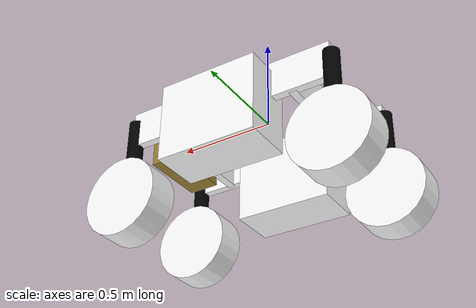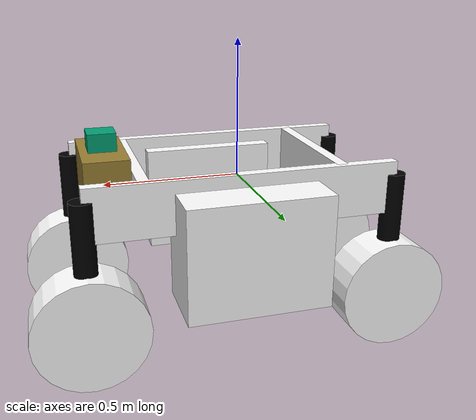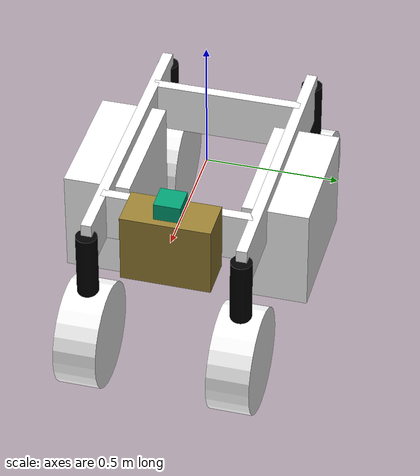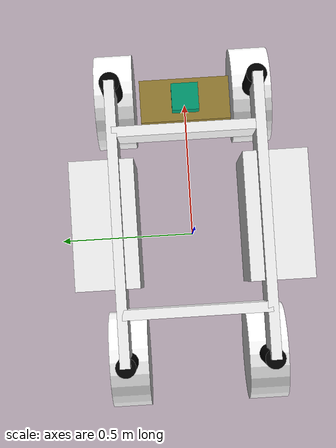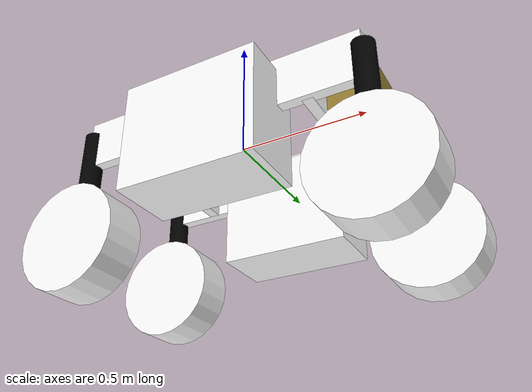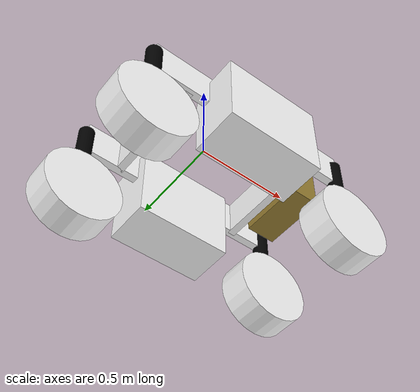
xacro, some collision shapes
<?xml version="1.0"?>
<robot xmlns:xacro="http://www.ros.org/wiki/xacro" name="thorvald_ii">

  <xacro:property name="platform_length" value="1.095" />
  <xacro:property name="platform_width" value="0.570" />
  <xacro:property name="platform_height" value="0.695" />
  <xacro:property name="front_offset" value="0.200" />
  <xacro:property name="rear_offset" value="0.200" />
  <xacro:property name="frame_beam_width" value="0.040" />
  <xacro:property name="frame_beam_height" value="0.190" />
  <xacro:property name="leg_radius" value="0.040" />
  <xacro:property name="wheel_radius" value="0.200" />
  <xacro:property name="wheel_width" value="0.160" />

  <xacro:property name="battery_length" value="0.500" />
  <xacro:property name="battery_width" value="0.250" />
  <xacro:property name="battery_height" value="0.400" />
  <xacro:property name="battery_x" value="0.0" />
  <xacro:property name="battery_y" value="0.050" />
  <xacro:property name="battery_z" value="-0.150" />

  <xacro:property name="sensor_box_length" value="0.159" />
  <xacro:property name="sensor_box_width" value="0.336" />
  <xacro:property name="sensor_box_height" value="0.270" />
  <xacro:property name="sensor_box_x" value="0.100" />
  <xacro:property name="sensor_box_y" value="0.000" />
  <xacro:property name="sensor_box_z" value="0.000" />

  <xacro:property name="laser_x" value="0.55" />
  <xacro:property name="laser_y" value="0.00" />
  <xacro:property name="laser_z" value="0.71" />
  <xacro:property name="laser_r" value="0.00" />
  <xacro:property name="laser_p" value="0.00" />
  <xacro:property name="laser_y" value="0.00" />

  <xacro:property name="pi" value="3.14159265359" />

  <xacro:include filename="$(find testbot_description)/urdf/thorvald_ii.gazebo" />
  <xacro:include filename="$(find testbot_description)/urdf/materials.xacro" />

  <link name="front_frame">
  </link>

  <link name="prism">
  </link>

  <link name="base_link">
  </link>

  <link name="front_link">
      <inertial>
         <mass value="3.57593" />
         <inertia  ixx="9.10834154273" ixy="1.58213307656"  ixz="2.41894531959"  iyy="7.61461127751"  iyz="3.78869385449"  izz="3.51520282177" />
       </inertial>
    <visual>
      <geometry>
        <box size="${frame_beam_width} ${platform_width} ${frame_beam_height}"/>
      </geometry>
      <material name="white">
        <color rgba="1 1 1 1"/>
      </material>
    </visual>
    <collision>
      <geometry>
        <box size="${frame_beam_width} ${platform_width} ${frame_beam_height}"/>
      </geometry>
    </collision>
  </link>

  <link name="rear_link">
 <inertial>
         <mass value="3.57593" />
         <inertia  ixx="9.10834154273" ixy="1.58213307656"  ixz="2.41894531959"  iyy="7.61461127751"  iyz="3.78869385449"  izz="3.51520282177" />
       </inertial>
    <visual>
      <geometry>
        <box size="${frame_beam_width} ${platform_width} ${frame_beam_height}"/>
      </geometry>
      <material name="white">
        <color rgba="1 1 1 1"/>
      </material>
    </visual>
    <collision>
      <geometry>
        <box size="${frame_beam_width} ${platform_width} ${frame_beam_height}"/>
      </geometry>
    </collision>
  </link>

  <link name="frame_left_link">
<inertial>
         <mass value="9.27558" />
         <inertia  ixx="0.08543320989" ixy="0.00203527346"  ixz="0.00005369318"  iyy="1.73617847697"  iyz="0.00256904615"  izz="1.80153923143" />
       </inertial>
    <visual>
      <geometry>
        <box size="${platform_length} ${frame_beam_width} ${frame_beam_height}"/>
      </geometry>
      <material name="white">
        <color rgba="1 1 1 1"/>
      </material>
    </visual>
    <collision>
      <geometry>
        <box size="${platform_length} ${frame_beam_width} ${frame_beam_height}"/>
      </geometry>
    </collision>
  </link>

  <link name="frame_right_link">
<inertial>
         <mass value="9.27558" />
         <inertia  ixx="0.08543320989" ixy="0.00203527346"  ixz="0.00005369318"  iyy="1.73617847697"  iyz="0.00256904615"  izz="1.80153923143" />
       </inertial>
    <visual>
      <geometry>
        <box size="${platform_length} ${frame_beam_width} ${frame_beam_height}"/>
      </geometry>
      <material name="white">
        <color rgba="1 1 1 1"/>
      </material>
    </visual>
    <collision>
      <geometry>
        <box size="${platform_length} ${frame_beam_width} ${frame_beam_height}"/>
      </geometry>
    </collision>
  </link>

  <link name="left_battery_link">
<inertial>
         <mass value="6.31990" />
         <inertia  ixx="0.29398133956" ixy="-0.00466804851"  ixz="0.01762371158"  iyy="0.34338589741"  iyz="-0.01930502652"  izz="0.36556453481" />
       </inertial>
    <visual>
      <geometry>
        <box size="${battery_length} ${battery_width} ${battery_height}"/>
      </geometry>
      <material name="white">
        <color rgba="1 1 1 1"/>
      </material>
    </visual>
    <collision>
      <geometry>
        <box size="${battery_length} ${battery_width} ${battery_height}"/>
      </geometry>
    </collision>
  </link>

  <link name="right_battery_link">
<inertial>
         <mass value="6.31990" />
         <inertia  ixx="0.29398133956" ixy="-0.00466804851"  ixz="0.01762371158"  iyy="0.34338589741"  iyz="-0.01930502652"  izz="0.36556453481" />
       </inertial>
    <visual>
      <geometry>
        <box size="${battery_length} ${battery_width} ${battery_height}"/>
      </geometry>
      <material name="white">
        <color rgba="1 1 1 1"/>
      </material>
    </visual>
    <collision>
      <geometry>
        <box size="${battery_length} ${battery_width} ${battery_height}"/>
      </geometry>
    </collision>
  </link>

  <link name="sensor_box_link">
<inertial>
         <mass value="6" />
         <inertia  ixx="0.001" ixy="-0.00"  ixz="0.0"  iyy="0.001"  iyz="0.0"  izz="0.001" />
       </inertial>
    <visual>
      <geometry>
        <box size="${sensor_box_length} ${sensor_box_width} ${sensor_box_height}"/>
      </geometry>
      <material name="wood">
        <color rgba="0.6 0.5 0.2 1"/>
      </material>
    </visual>
    <collision>
      <geometry>
        <box size="${sensor_box_length} ${sensor_box_width} ${sensor_box_height}"/>
      </geometry>
    </collision>
  </link>

  <joint name="base_link_front_frame" type="fixed">
    <parent link="base_link"/>
    <child link="front_frame"/>
    <origin xyz="0.6 0 0" rpy="0 0 0"/>
  </joint>

  <joint name="front_frame_front_link" type="fixed">
    <parent link="front_frame"/>
    <child link="front_link"/>
    <origin xyz="${-front_offset} 0 0" rpy="0 0 0"/>
  </joint>

  <joint name="front_rear" type="fixed">
    <parent link="front_link"/>
    <child link="rear_link"/>
    <origin xyz="${-platform_length + rear_offset + front_offset} 0 0" rpy="0 0 0"/>
  </joint>

  <joint name="front_link_laser" type="fixed">
    <parent link="front_link"/>
    <child link="prism"/>
    <origin xyz="${laser_x} ${laser_y} ${laser_z}" rpy="${laser_r} ${laser_p} ${laser_y}"/>
  </joint>

  <joint name="frame_front_left" type="fixed">
    <parent link="front_link"/>
    <child link="frame_left_link"/>
    <origin xyz="${-platform_length/2 + front_offset} ${platform_width/2} 0" rpy="0 0 0"/>
  </joint>

  <joint name="frame_front_right" type="fixed">
    <parent link="front_link"/>
    <child link="frame_right_link"/>
    <origin xyz="${-platform_length/2 + front_offset} ${-platform_width/2} 0" rpy="0 0 0"/>
  </joint>

  <joint name="frame_battery_left" type="fixed">
    <parent link="frame_left_link"/>
    <child link="left_battery_link"/>
    <origin xyz="${battery_x} ${battery_y} ${battery_z}" rpy="0 0 0"/>
  </joint>

  <joint name="frame_battery_right" type="fixed">
    <parent link="frame_right_link"/>
    <child link="right_battery_link"/>
    <origin xyz="${battery_x} ${-battery_y} ${battery_z}" rpy="0 0 0"/>
  </joint>

  <joint name="frame_sensor_box" type="fixed">
    <parent link="front_link"/>
    <child link="sensor_box_link"/>
    <origin xyz="${sensor_box_x} ${sensor_box_y} ${sensor_box_z}" rpy="0 0 0"/>
  </joint>

  <link name="rear_right_leg">
<inertial>
         <mass value="18.04113851362" />
         <inertia  ixx="0.42070073921738702" ixy="-0.06822925640195674"  ixz="0.00112608960289035"  iyy="0.14032771307242548"  iyz="0.04164060266313061"  izz="0.37196263174132627" />
       </inertial>
    <visual>
      <geometry>
        <cylinder length="${platform_height - wheel_radius}" radius="${leg_radius}"/>
      </geometry>
      <material name="white">
        <color rgba="0 0 0"/>
      </material>
    </visual>
    <collision>
      <geometry>
        <cylinder length="${platform_height - wheel_radius}" radius="${leg_radius}"/>
      </geometry>
    </collision>
  </link>

  <joint name="steering0" type="continuous">
    <parent link="frame_right_link"/>
    <child link="rear_right_leg"/>
    <origin xyz="${-platform_length/2} 0 ${-wheel_radius}" rpy="0 0 0"/>
    <axis xyz="0 0 1"/>
  </joint>

  <link name="rear_right_wheel">
<inertial>
         <mass value="6.38698" />
         <inertia  ixx="0.41728824734" ixy="-0.00126432781"  ixz="0.00"  iyy="0.09931113387"  iyz="-0.000000002"  izz="0.3547904736" />
       </inertial>
    <visual>
      <geometry>
        <cylinder length="${wheel_width}" radius="${wheel_radius}"/>
      </geometry>
      <material name="black">
        <color rgba="1 1 1"/>
      </material>
    </visual>
    <collision>
      <geometry>
        <cylinder length="${wheel_width}" radius="${wheel_radius}"/>
      </geometry>
    </collision>
  </link>

  <joint name="wheel0" type="continuous">
    <parent link="rear_right_leg"/>
    <child link="rear_right_wheel"/>
    <origin xyz="0 0 ${-wheel_radius}" rpy="${-pi / 2} 0 0"/>
    <axis xyz="0 0 1"/>
  </joint>

  <link name="front_right_leg">
<inertial>
         <mass value="18.04113851362" />
         <inertia  ixx="0.42070073921738702" ixy="-0.06822925640195674"  ixz="0.00112608960289035"  iyy="0.14032771307242548"  iyz="0.04164060266313061"  izz="0.37196263174132627" />
       </inertial>
    <visual>
      <geometry>
        <cylinder length="${platform_height - wheel_radius}" radius="${leg_radius}"/>
      </geometry>
      <material name="white">
        <color rgba="0 0 0"/>
      </material>
    </visual>
    <collision>
      <geometry>
        <cylinder length="${platform_height - wheel_radius}" radius="${leg_radius}"/>
      </geometry>
    </collision>
  </link>

  <joint name="steering1" type="continuous">
    <parent link="frame_right_link"/>
    <child link="front_right_leg"/>
    <origin xyz="${platform_length/2} 0 ${-wheel_radius}" rpy="0 0 0"/>
    <axis xyz="0 0 1"/>
  </joint>

  <link name="front_right_wheel">
<inertial>
         <mass value="6.38698" />
         <inertia  ixx="0.41728824734" ixy="-0.00126432781"  ixz="0.00"  iyy="0.09931113387"  iyz="-0.000000002"  izz="0.3547904736" />
       </inertial>
    <visual>
      <geometry>
        <cylinder length="${wheel_width}" radius="${wheel_radius}"/>
      </geometry>
      <material name="black">
        <color rgba="1 1 1"/>
      </material>
    </visual>
    <collision>
      <geometry>
        <cylinder length="${wheel_width}" radius="${wheel_radius}"/>
      </geometry>
    </collision>
  </link>

  <joint name="wheel1" type="continuous">
    <parent link="front_right_leg"/>
    <child link="front_right_wheel"/>
    <origin xyz="0 0 ${-wheel_radius}" rpy="${-pi / 2} 0 0"/>
    <axis xyz="0 0 1"/>
  </joint>

  <link name="front_left_leg">
<inertial>
         <mass value="18.04113851362" />
         <inertia  ixx="0.42070073921738702" ixy="-0.06822925640195674"  ixz="0.00112608960289035"  iyy="0.14032771307242548"  iyz="0.04164060266313061"  izz="0.37196263174132627" />
       </inertial>
    <visual>
      <geometry>
        <cylinder length="${platform_height - wheel_radius}" radius="${leg_radius}"/>
      </geometry>
      <material name="white">
        <color rgba="0 0 0"/>
      </material>
    </visual>
    <collision>
      <geometry>
        <cylinder length="${platform_height - wheel_radius}" radius="${leg_radius}"/>
      </geometry>
    </collision>
  </link>

  <joint name="steering2" type="continuous">
    <parent link="frame_left_link"/>
    <child link="front_left_leg"/>
    <origin xyz="${platform_length/2} 0 ${-wheel_radius}" rpy="0 0 0"/>
    <axis xyz="0 0 1"/>
  </joint>

  <link name="front_left_wheel">
<inertial>
         <mass value="6.38698" />
         <inertia  ixx="0.41728824734" ixy="-0.00126432781"  ixz="0.00"  iyy="0.09931113387"  iyz="-0.000000002"  izz="0.3547904736" />
       </inertial>
    <visual>
      <geometry>
        <cylinder length="${wheel_width}" radius="${wheel_radius}"/>
      </geometry>
      <material name="black">
        <color rgba="1 1 1"/>
      </material>
    </visual>
    <collision>
      <geometry>
        <cylinder length="${wheel_width}" radius="${wheel_radius}"/>
      </geometry>
    </collision>
  </link>

  <joint name="wheel2" type="continuous">
    <parent link="front_left_leg"/>
    <child link="front_left_wheel"/>
    <origin xyz="0 0 ${-wheel_radius}" rpy="${-pi / 2} 0 0"/>
    <axis xyz="0 0 1"/>
  </joint>

  <link name="rear_left_leg">
<inertial>
         <mass value="18.04113851362" />
         <inertia  ixx="0.42070073921738702" ixy="-0.06822925640195674"  ixz="0.00112608960289035"  iyy="0.14032771307242548"  iyz="0.04164060266313061"  izz="0.37196263174132627" />
       </inertial>
    <visual>
      <geometry>
        <cylinder length="${platform_height - wheel_radius}" radius="${leg_radius}"/>
      </geometry>
      <material name="white">
        <color rgba="0 0 0"/>
      </material>
    </visual>
    <collision>
      <geometry>
        <cylinder length="${platform_height - wheel_radius}" radius="${leg_radius}"/>
      </geometry>
    </collision>
  </link>

  <joint name="steering3" type="continuous">
    <parent link="frame_left_link"/>
    <child link="rear_left_leg"/>
    <origin xyz="${-platform_length/2} 0 ${-wheel_radius}" rpy="0 0 0"/>
    <axis xyz="0 0 1"/>
  </joint>

  <link name="rear_left_wheel">
<inertial>
         <mass value="6.38698" />
         <inertia  ixx="0.41728824734" ixy="-0.00126432781"  ixz="0.00"  iyy="0.09931113387"  iyz="-0.000000002"  izz="0.3547904736" />
       </inertial>
    <visual>
      <geometry>
        <cylinder length="${wheel_width}" radius="${wheel_radius}"/>
      </geometry>
      <material name="black">
        <color rgba="1 1 1"/>
      </material>
    </visual>
    <collision>
      <geometry>
        <cylinder length="${wheel_width}" radius="${wheel_radius}"/>
      </geometry>
    </collision>
  </link>

  <joint name="wheel3" type="continuous">
    <parent link="rear_left_leg"/>
    <child link="rear_left_wheel"/>
    <origin xyz="0 0 ${-wheel_radius}" rpy="${-pi / 2} 0 0"/>
    <axis xyz="0 0 1"/>
  </joint>

  <!-- Hokuyo Laser -->
  <link name="laser">
    <collision>
      <origin xyz="0 0 0" rpy="0 0 0"/>
      <geometry>
    <box size="0.1 0.1 0.1"/>
      </geometry>
    </collision>

    <visual>
      <origin xyz="0 0 0" rpy="0 0 0"/>
      <geometry>
        <mesh filename="package://testbot_description/meshes/hokuyo.dae"/>
      </geometry>
    </visual>

    <inertial>
      <mass value="1e-5" />
      <origin xyz="0 0 0" rpy="0 0 0"/>
      <inertia ixx="1e-6" ixy="0" ixz="0" iyy="1e-6" iyz="0" izz="1e-6" />
    </inertial>
  </link>

<joint name="hokuyo_joint" type="fixed">
    <axis xyz="0 1 0" />
    <origin xyz="0.1 0 .15" rpy="0 0 0"/>
    <parent link="front_link"/>
    <child link="laser"/>
  </joint>

</robot>
